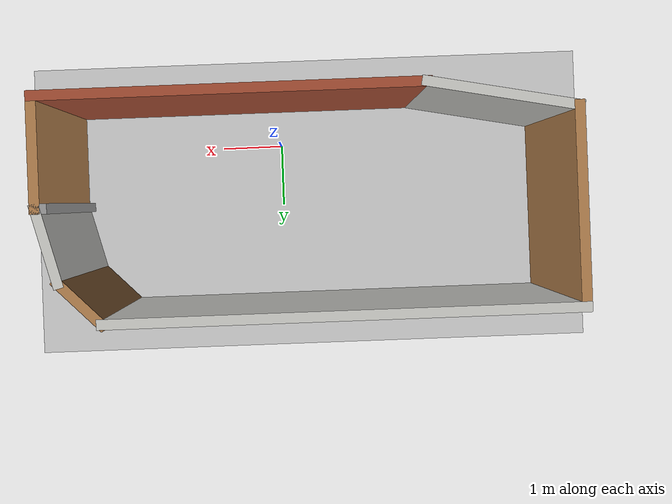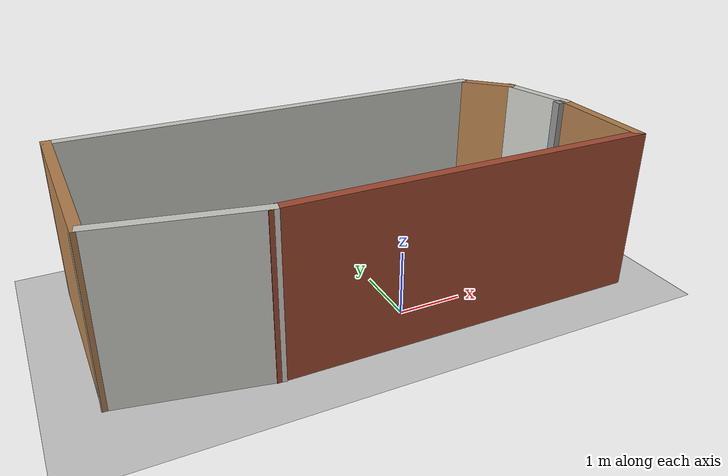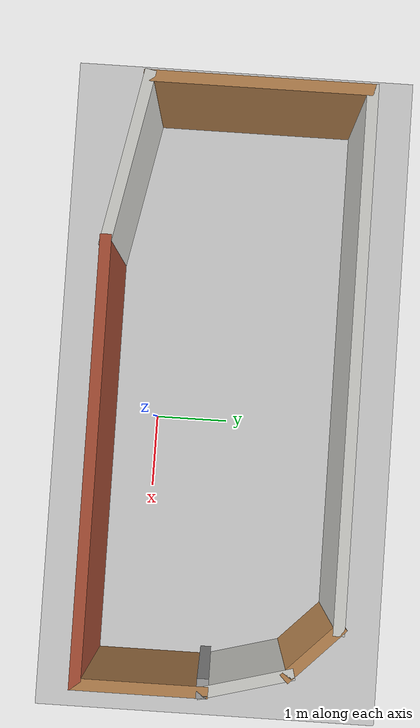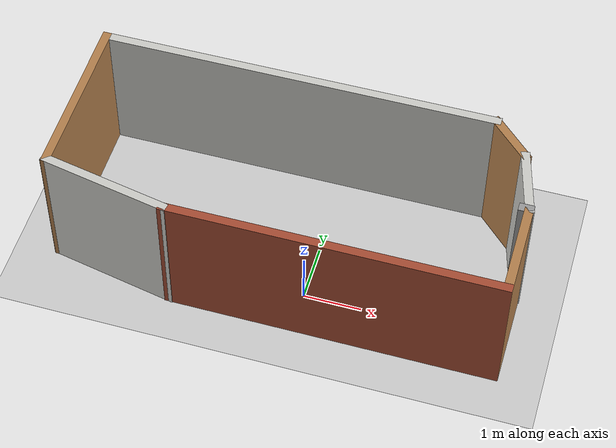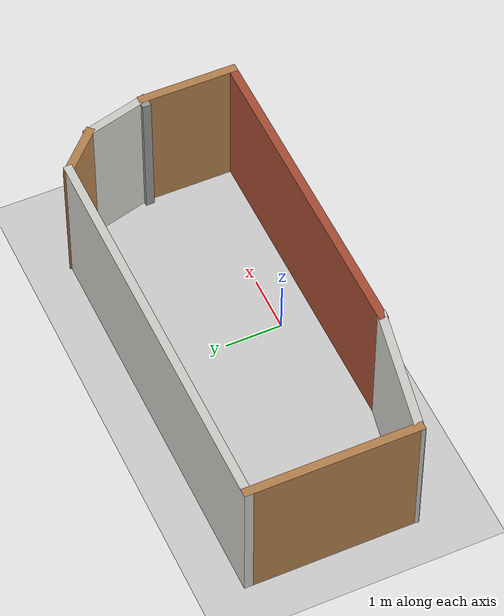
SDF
<sdf version="1.7">
 <world name="default">
  <light name="sun" type="directional">
   <pose>0 0 10 0 -0 0</pose>
   <diffuse>0.8 0.8 0.8 1</diffuse>
   <specular>0.2 0.2 0.2 1</specular>
   <attenuation>
    <range>1000</range>
    <constant>0.9</constant>
    <linear>0.01</linear>
    <quadratic>0.001</quadratic>
   </attenuation>
   <direction>-0.5 0.1 -0.9</direction>
   <spot><inner_angle>0</inner_angle><outer_angle>0</outer_angle><falloff>0</falloff></spot>
  </light>
  <model name="ground_plane">
   <static>1</static>
   <link name="link">
    <collision name="collision">
     <geometry><plane><normal>0 0 1</normal><size>100 100</size></plane></geometry>
     <surface>
      <contact><collide_bitmask>65535</collide_bitmask></contact>
      <friction><ode><mu>100</mu><mu2>50</mu2></ode></friction>
     </surface>
    </collision>
    <visual name="visual">
     <cast_shadows>0</cast_shadows>
     <geometry><plane><normal>0 0 1</normal><size>100 100</size></plane></geometry>
     <material>
      <script><uri>file://media/materials/scripts/gazebo.material</uri><name>Gazebo/Grey</name></script>
     </material>
    </visual>
   </link>
  </model>
  <gravity>0 0 -9.8</gravity>
  <magnetic_field>6e-06 2.3e-05 -4.2e-05</magnetic_field>
  <atmosphere type="adiabatic"/>
  <physics type="ode">
   <max_step_size>0.001</max_step_size>
   <real_time_factor>1</real_time_factor>
   <real_time_update_rate>1000</real_time_update_rate>
  </physics>
  <scene><ambient>0.4 0.4 0.4 1</ambient><background>0.7 0.7 0.7 1</background><shadows>1</shadows></scene>
  <audio><device>default</device></audio>
  <spherical_coordinates>
   <surface_model>EARTH_WGS84</surface_model>
   <latitude_deg>0</latitude_deg>
   <longitude_deg>0</longitude_deg>
   <elevation>0</elevation>
   <heading_deg>0</heading_deg>
  </spherical_coordinates>
  <model name="my_building">
   <pose>-0.427716 0.965867 0 0 -0 0</pose>
   <link name="Wall_10">
    <collision name="Wall_10_Collision">
     <geometry><box><size>7 0.15 2.5</size></box></geometry>
     <pose>0 0 1.25 0 -0 0</pose>
    </collision>
    <visual name="Wall_10_Visual">
     <pose>0 0 1.25 0 -0 0</pose>
     <geometry><box><size>7 0.15 2.5</size></box></geometry>
     <material>
      <script><uri>file://media/materials/scripts/gazebo.material</uri><name>Gazebo/CeilingTiled</name></script>
      <ambient>1 1 1 1</ambient>
     </material>
     <meta><layer>0</layer></meta>
    </visual>
    <pose>-0.444854 1.62269 0 0 -0 3.14159</pose>
   </link>
   <link name="Wall_11">
    <collision name="Wall_11_Collision">
     <geometry><box><size>3 0.15 2.5</size></box></geometry>
     <pose>0 0 1.25 0 -0 0</pose>
    </collision>
    <visual name="Wall_11_Visual">
     <pose>0 0 1.25 0 -0 0</pose>
     <geometry><box><size>3 0.15 2.5</size></box></geometry>
     <material>
      <script><uri>file://media/materials/scripts/gazebo.material</uri><name>Gazebo/Wood</name></script>
      <ambient>1 1 1 1</ambient>
     </material>
     <meta><layer>0</layer></meta>
    </visual>
    <pose>-3.86985 0.197692 0 0 -0 -1.5708</pose>
   </link>
   <link name="Wall_12">
    <collision name="Wall_12_Collision">
     <geometry><box><size>2.32541 0.15 2.5</size></box></geometry>
     <pose>0 0 1.25 0 -0 0</pose>
    </collision>
    <visual name="Wall_12_Visual">
     <pose>0 0 1.25 0 -0 0</pose>
     <geometry><box><size>2.32541 0.15 2.5</size></box></geometry>
     <material>
      <script><uri>file://media/materials/scripts/gazebo.material</uri><name>Gazebo/CeilingTiled</name></script>
      <ambient>1 1 1 1</ambient>
     </material>
     <meta><layer>0</layer></meta>
    </visual>
    <pose>-2.80198 -1.43409 0 0 -0 -0.19127</pose>
   </link>
   <link name="Wall_2">
    <collision name="Wall_2_Collision">
     <geometry><box><size>5.75 0.15 2.5</size></box></geometry>
     <pose>0 0 1.25 0 -0 0</pose>
    </collision>
    <visual name="Wall_2_Visual">
     <pose>0 0 1.25 0 -0 0</pose>
     <geometry><box><size>5.75 0.15 2.5</size></box></geometry>
     <material>
      <script><uri>file://media/materials/scripts/gazebo.material</uri><name>Gazebo/Bricks</name></script>
      <ambient>1 1 1 1</ambient>
     </material>
     <meta><layer>0</layer></meta>
    </visual>
    <pose>1.06589 -1.64087 0 0 -0 0</pose>
   </link>
   <link name="Wall_4">
    <collision name="Wall_4_Collision">
     <geometry><box><size>1.75 0.15 2.5</size></box></geometry>
     <pose>0 0 1.25 0 -0 0</pose>
    </collision>
    <visual name="Wall_4_Visual">
     <pose>0 0 1.25 0 -0 0</pose>
     <geometry><box><size>1.75 0.15 2.5</size></box></geometry>
     <material>
      <script><uri>file://media/materials/scripts/gazebo.material</uri><name>Gazebo/Wood</name></script>
      <ambient>1 1 1 1</ambient>
     </material>
     <meta><layer>0</layer></meta>
    </visual>
    <pose>3.86589 -0.840867 0 0 -0 1.5708</pose>
   </link>
   <link name="Wall_5">
    <collision name="Wall_5_Collision">
     <geometry><box><size>0.25 0.15 2.5</size></box></geometry>
     <pose>0 0 1.25 0 -0 0</pose>
    </collision>
    <visual name="Wall_5_Visual">
     <pose>0 0 1.25 0 -0 0</pose>
     <geometry><box><size>0.25 0.15 2.5</size></box></geometry>
     <material>
      <script><uri>file://media/materials/scripts/gazebo.material</uri><name>Gazebo/Grey</name></script>
      <ambient>1 1 1 1</ambient>
     </material>
     <meta><layer>0</layer></meta>
    </visual>
    <pose>3.81589 -0.040867 0 0 -0 3.14159</pose>
   </link>
   <link name="Wall_8">
    <collision name="Wall_8_Collision">
     <geometry><box><size>1.25 0.15 2.5</size></box></geometry>
     <pose>0 0 1.25 0 -0 0</pose>
    </collision>
    <visual name="Wall_8_Visual">
     <pose>0 0 1.25 0 -0 0</pose>
     <geometry><box><size>1.25 0.15 2.5</size></box></geometry>
     <material>
      <script><uri>file://media/materials/scripts/gazebo.material</uri><name>Gazebo/CeilingTiled</name></script>
      <ambient>1 1 1 1</ambient>
     </material>
     <meta><layer>0</layer></meta>
    </visual>
    <pose>3.72354 0.490392 0 0 -0 1.8326</pose>
   </link>
   <link name="Wall_9">
    <collision name="Wall_9_Collision">
     <geometry><box><size>1 0.15 2.5</size></box></geometry>
     <pose>0 0 1.25 0 -0 0</pose>
    </collision>
    <visual name="Wall_9_Visual">
     <pose>0 0 1.25 0 -0 0</pose>
     <geometry><box><size>1 0.15 2.5</size></box></geometry>
     <material>
      <script><uri>file://media/materials/scripts/gazebo.material</uri><name>Gazebo/Wood</name></script>
      <ambient>1 1 1 1</ambient>
     </material>
     <meta><layer>0</layer></meta>
    </visual>
    <pose>3.28067 1.32217 0 0 -0 2.35619</pose>
   </link>
   <static>1</static>
  </model>
 </world>
</sdf>
